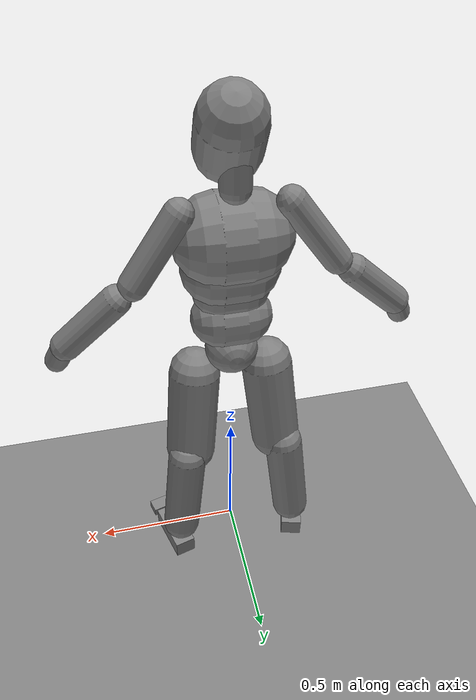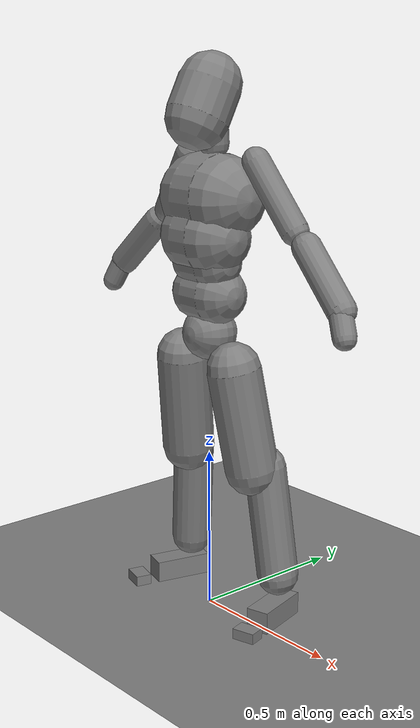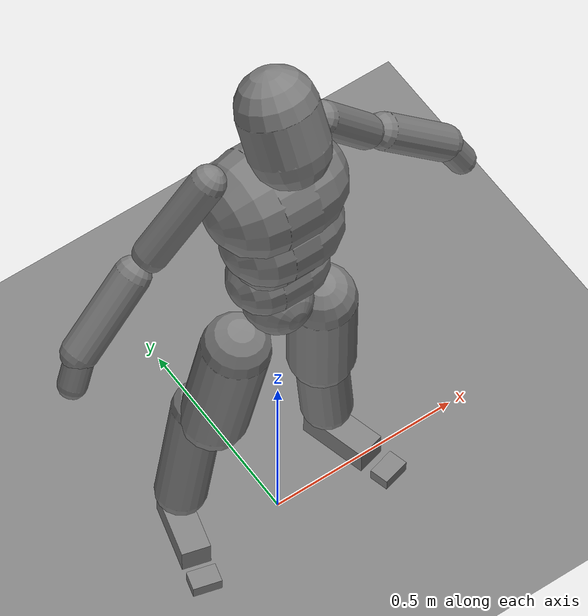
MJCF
<mujoco model="geno">
  <compiler angle="degree"/>
  <worldbody>
    <geom name="floor" type="plane" size="20 20 0.1"/>
    <body name="Hips" pos="0.000136 0.021367 0.855290" quat="0.7190179 0.6949371 0.0066784 0.0055692">
      <freejoint/>
      <inertial pos="-0.002797 0.044457 0.024092" mass="4.45589" fullinertia="1.416881e-2 4.166509e-2 3.345195e-2 4.384086e-4 -3.429711e-4 4.219764e-4"/>
      <geom name="Hips" type="sphere" pos="-0.000517 0.025090 0.020067" size="0.083130" mass="0"/>
      <body name="Spine" pos="0.000000 0.088142 -0.020800" quat="0.9998620 0.0151347 -0.0023620 0.0064243">
        <joint name="Spine" type="ball" range="0 11.21" armature="0.01" damping="0.2"/>
        <inertial pos="0.002484 0.043300 0.056409" mass="4.08115" fullinertia="1.405166e-2 3.181992e-2 2.314766e-2 4.918427e-4 3.236678e-5 -4.556020e-4"/>
        <geom name="Spine" type="capsule" fromto="-0.036303 0.060079 0.043650 0.036727 0.059267 0.044583" size="0.088850" mass="0"/>
        <body name="Spine1" pos="0.000000 0.088441 -0.000000" quat="0.9999121 0.0123071 -0.0048690 -0.0007149">
          <joint name="Spine1" type="ball" range="0 18.96" armature="0.01" damping="0.2"/>
          <inertial pos="0.001022 0.059312 0.062439" mass="4.55067" fullinertia="1.594185e-2 2.975274e-2 2.435049e-2 1.011372e-4 -9.664256e-5 2.502705e-4"/>
          <geom name="Spine1" type="capsule" fromto="-0.033319 0.071789 0.052966 0.036517 0.071126 0.053195" size="0.082490" mass="0"/>
          <body name="Spine2" pos="-0.000000 0.116823 0.000000" quat="0.9999123 0.0123117 -0.0048472 -0.0006809">
            <joint name="Spine2" type="ball" range="0 18.96" armature="0.01" damping="0.2"/>
            <inertial pos="0.003052 0.064627 0.037981" mass="5.95934" fullinertia="2.652761e-2 5.119871e-2 3.785424e-2 1.557172e-4 5.341413e-5 1.251421e-3"/>
            <geom name="Spine2" type="capsule" fromto="-0.032477 0.030267 0.055403 0.038059 0.029691 0.054966" size="0.112590" mass="0"/>
            <body name="Spine3" pos="0.000000 0.117467 -0.000000" quat="0.9999002 0.0123961 0.0066540 -0.0013138">
              <joint name="Spine3" type="ball" range="0 18.80" armature="0.01" damping="0.2"/>
              <inertial pos="0.002882 0.054869 0.005577" mass="6.54204" fullinertia="3.225313e-2 6.693120e-2 4.849690e-2 6.867091e-4 -3.467677e-4 7.612631e-6"/>
              <geom name="Spine3" type="capsule" fromto="-0.040853 0.026610 0.022166 0.047143 0.026124 0.022808" size="0.129550" mass="0"/>
              <body name="Neck" pos="0.000000 0.176583 -0.000001" quat="0.9999711 -0.0009803 -0.0016147 -0.0073652">
                <joint name="Neck" type="ball" range="0 26.45" armature="0.01" damping="0.2"/>
                <inertial pos="-0.007228 0.026166 -0.021022" mass="0.45049" fullinertia="5.296824e-4 7.544096e-4 4.395163e-4 -5.079582e-5 -2.347617e-5 -6.816015e-5"/>
                <body name="Neck1" pos="0.000000 0.051015 0.000000" quat="0.9998862 -0.0106710 -0.0009015 0.0106326">
                  <joint name="Neck1" type="ball" range="0 25.87" armature="0.01" damping="0.2"/>
                  <inertial pos="0.004790 0.025451 0.024238" mass="0.94423" fullinertia="2.028932e-3 2.730615e-3 1.209336e-3 -8.382928e-6 1.242427e-5 5.000565e-5"/>
                  <geom name="Neck1" type="capsule" fromto="-0.001087 -0.050996 -0.001086 -0.000001 0.051013 0.000005" size="0.044260" mass="0"/>
                  <body name="Head" pos="-0.000000 0.051015 0.000000" quat="0.9997055 -0.0241908 -0.0008839 -0.0017602">
                    <joint name="Head" type="ball" range="0 68.29" armature="0.01" damping="0.2"/>
                    <inertial pos="0.004759 0.068083 0.017647" mass="3.20320" fullinertia="1.227063e-2 1.177448e-2 9.639017e-3 -5.301857e-5 2.517261e-5 4.215603e-4"/>
                    <geom name="Head" type="capsule" fromto="0.004894 0.069709 0.014015 0.004092 -0.023048 0.061185" size="0.095000" mass="0"/>
                  </body>
                </body>
              </body>
              <body name="RightShoulder" pos="-0.026254 0.111752 -0.000000" quat="0.7207133 -0.0480071 -0.0200096 0.6912795">
                <joint name="RightShoulder" type="ball" range="0 51.58" armature="0.01" damping="0.2"/>
                <inertial pos="0.024763 0.056958 -0.026115" mass="1.37239" fullinertia="6.932922e-3 2.655144e-3 5.147230e-3 1.788989e-4 6.598627e-5 -8.186329e-4"/>
                <body name="RightArm" pos="0.000000 0.104347 0.000000" quat="0.9174249 -0.0166565 -0.0312683 0.3963291">
                  <joint name="RightArm" type="ball" range="0 121.39" armature="0.01" damping="0.2"/>
                  <inertial pos="-0.004037 0.117248 -0.003779" mass="2.01781" fullinertia="1.201333e-2 3.342168e-3 1.194582e-2 -6.004349e-4 1.310759e-4 -5.533244e-5"/>
                  <geom name="RightArm" type="capsule" fromto="0.025703 -0.001495 -0.011785 -0.011113 0.229003 -0.003679" size="0.042130" mass="0"/>
                  <body name="RightForeArm" pos="0.000700 0.258718 -0.005370" quat="0.9933285 0.1137151 -0.0055202 0.0183670">
                    <joint name="RightForeArm" type="ball" range="0 145.08" armature="0.01" damping="0.2"/>
                    <inertial pos="0.001672 0.104831 0.004978" mass="1.03858" fullinertia="4.947034e-3 7.897659e-4 4.932617e-3 -1.582228e-4 -2.505104e-5 -2.423182e-5"/>
                    <geom name="RightForeArm" type="capsule" fromto="-0.003560 0.032661 0.003150 0.007905 0.251886 0.002527" size="0.044030" mass="0"/>
                    <body name="RightHand" pos="0.002990 0.248929 -0.000338" quat="0.9931041 0.0852536 0.0222739 0.0773324">
                      <joint name="RightHand" type="ball" range="0 79.11" armature="0.01" damping="0.2"/>
                      <inertial pos="-0.005691 0.065490 0.001969" mass="0.43554" fullinertia="1.046350e-3 4.353276e-4 7.780540e-4 -7.684642e-6 6.810656e-5 4.327392e-5"/>
                      <geom name="RightHand" type="capsule" fromto="0.006658 0.003381 0.008732 -0.004050 0.081477 0.003713" size="0.034900" mass="0"/>
                    </body>
                  </body>
                </body>
              </body>
              <body name="LeftShoulder" pos="0.026254 0.111752 -0.000000" quat="0.7285084 -0.0557227 0.0403427 -0.6815739">
                <joint name="LeftShoulder" type="ball" range="0 48.23" armature="0.01" damping="0.2"/>
                <inertial pos="-0.033361 0.054056 -0.009106" mass="1.44869" fullinertia="7.087823e-3 2.559847e-3 6.043877e-3 -9.254463e-4 -6.481078e-5 6.189940e-4"/>
                <body name="LeftArm" pos="0.000000 0.108136 -0.000000" quat="0.9100260 0.0216595 0.0100473 -0.4138629">
                  <joint name="LeftArm" type="ball" range="0 113.07" armature="0.01" damping="0.2"/>
                  <inertial pos="0.005023 0.106062 -0.001892" mass="2.16155" fullinertia="1.611792e-2 4.098529e-3 1.596975e-2 1.629118e-3 -1.999572e-4 4.388655e-4"/>
                  <geom name="LeftArm" type="capsule" fromto="-0.025782 0.004069 -0.003939 0.010964 0.234711 -0.006006" size="0.042130" mass="0"/>
                  <body name="LeftForeArm" pos="0.004952 0.255930 -0.004494" quat="0.9932600 0.1109474 0.0119880 0.0313284">
                    <joint name="LeftForeArm" type="ball" range="0 144.71" armature="0.01" damping="0.2"/>
                    <inertial pos="0.004125 0.108976 -0.003983" mass="1.09327" fullinertia="5.639841e-3 8.516646e-4 5.627993e-3 -3.029915e-4 3.355343e-5 1.480540e-4"/>
                    <geom name="LeftForeArm" type="capsule" fromto="0.001734 0.039857 -0.003781 0.013311 0.258947 -0.011334" size="0.044030" mass="0"/>
                    <body name="LeftHand" pos="0.011741 0.259241 -0.005205" quat="0.9868162 0.0318785 -0.0276721 -0.1562421">
                      <joint name="LeftHand" type="ball" range="0 103.52" armature="0.01" damping="0.2"/>
                      <inertial pos="0.009379 0.063651 -0.002494" mass="0.42641" fullinertia="9.827932e-4 4.371545e-4 7.270702e-4 4.474766e-5 -7.801054e-5 2.068141e-5"/>
                      <geom name="LeftHand" type="capsule" fromto="0.000001 0.000003 -0.000005 0.006656 0.078708 0.000306" size="0.034900" mass="0"/>
                    </body>
                  </body>
                </body>
              </body>
            </body>
          </body>
        </body>
      </body>
      <body name="RightUpLeg" pos="-0.112899 -0.000000 0.000000" quat="0.9974454 0.0288468 0.0198167 -0.0622722">
        <joint name="RightUpLeg" type="ball" range="0 153.96" armature="0.01" damping="0.2"/>
        <inertial pos="0.017543 -0.152412 0.016316" mass="5.84707" fullinertia="7.784939e-2 2.042338e-2 7.890235e-2 -8.725573e-3 -7.597809e-4 -8.999378e-3"/>
        <geom name="RightUpLeg" type="capsule" fromto="0.001549 -0.064501 0.025390 0.011611 -0.380252 -0.012723" size="0.082460" mass="0"/>
        <body name="RightLeg" pos="0.000000 -0.382003 -0.000002" quat="0.9975101 0.0662387 -0.0239163 -0.0037189">
          <joint name="RightLeg" type="ball" range="0 148.92" armature="0.01" damping="0.2"/>
          <inertial pos="-0.004812 -0.170048 -0.036385" mass="3.07622" fullinertia="3.783292e-2 4.880782e-3 3.651683e-2 9.583037e-4 -1.442494e-4 3.090964e-3"/>
          <geom name="RightLeg" type="capsule" fromto="-0.007464 -0.005354 -0.050748 0.001044 -0.352168 -0.017809" size="0.064070" mass="0"/>
          <body name="RightFoot" pos="0.000000 -0.399008 -0.000000" quat="0.9829418 0.1597410 -0.0809280 0.0419338">
            <joint name="RightFoot" type="ball" range="0 71.15" armature="0.01" damping="0.2"/>
            <inertial pos="-0.000831 -0.033604 0.044814" mass="1.07740" fullinertia="3.929912e-3 3.718404e-3 1.246483e-3 -1.924265e-5 1.227123e-4 -7.859172e-4"/>
            <geom name="RightFoot" type="box" pos="-0.001339 -0.037983 0.050393" quat="0.6661902 -0.1131844 -0.7094225 0.2002426" size="0.089970 0.034900 0.036180" mass="0"/>
            <body name="RightToeBase" pos="0.000000 -0.000000 0.152617" quat="0.9861133 -0.1660610 -0.0015025 0.0013379">
              <joint name="RightToeBase" type="ball" range="0 47.85" armature="0.01" damping="0.2"/>
              <inertial pos="0.000907 -0.004122 0.019932" mass="0.12362" fullinertia="3.987718e-5 8.752541e-5 7.208285e-5 -5.903843e-6 -4.191459e-6 -4.646142e-6"/>
              <geom name="RightToeBase" type="box" pos="-0.011820 -0.003959 0.035152" quat="0.6770684 -0.0016327 -0.7316713 0.0789332" size="0.025000 0.017450 0.036180" mass="0"/>
            </body>
          </body>
        </body>
      </body>
      <body name="LeftUpLeg" pos="0.113157 0.000000 0.000000" quat="0.9960126 0.0217091 -0.0498111 0.0707549">
        <joint name="LeftUpLeg" type="ball" range="0 143.21" armature="0.01" damping="0.2"/>
        <inertial pos="-0.012464 -0.163604 0.017225" mass="5.41642" fullinertia="6.708313e-2 1.515231e-2 6.327340e-2 1.129289e-3 -4.968466e-5 -8.690740e-3"/>
        <geom name="LeftUpLeg" type="capsule" fromto="-0.002040 -0.064295 0.028509 -0.017703 -0.379329 -0.013456" size="0.082460" mass="0"/>
        <body name="LeftLeg" pos="0.000004 -0.382004 0.000039" quat="0.9980025 0.0504194 0.0370947 -0.0085329">
          <joint name="LeftLeg" type="ball" range="0 153.59" armature="0.01" damping="0.2"/>
          <inertial pos="0.001029 -0.168197 -0.045719" mass="3.11473" fullinertia="3.850738e-2 4.756514e-3 3.744577e-2 -6.441914e-4 9.741593e-5 1.644770e-3"/>
          <geom name="LeftLeg" type="capsule" fromto="0.001892 -0.002635 -0.052481 -0.003067 -0.350649 -0.035189" size="0.064070" mass="0"/>
          <body name="LeftFoot" pos="0.000000 -0.399008 0.000000" quat="0.9836823 0.1637325 0.0730477 0.0149902">
            <joint name="LeftFoot" type="ball" range="0 57.12" armature="0.01" damping="0.2"/>
            <inertial pos="-0.001280 -0.039710 0.030473" mass="1.14000" fullinertia="4.751633e-3 4.588706e-3 1.274074e-3 3.623172e-6 -2.190323e-4 -8.421740e-4"/>
            <geom name="LeftFoot" type="box" pos="-0.001272 -0.045679 0.029951" quat="0.6576784 -0.0637078 0.7185252 -0.2170705" size="0.089970 0.034900 0.036180" mass="0"/>
            <body name="LeftToeBase" pos="0.000000 -0.000000 0.152616" quat="0.9840154 -0.1779332 0.0052535 -0.0050582">
              <joint name="LeftToeBase" type="ball" range="0 68.99" armature="0.01" damping="0.2"/>
              <inertial pos="-0.000212 -0.010227 0.010117" mass="0.06316" fullinertia="1.215378e-5 2.893389e-5 2.767069e-5 3.792290e-6 1.958035e-6 -1.489016e-6"/>
              <geom name="LeftToeBase" type="box" pos="0.013483 -0.012232 0.012498" quat="0.6633742 0.0518392 0.7418866 -0.0827592" size="0.025000 0.017450 0.036180" mass="0"/>
            </body>
          </body>
        </body>
      </body>
    </body>
  </worldbody>
  <contact>
    <exclude body1="Head" body2="Hips"/>
    <exclude body1="Head" body2="LeftArm"/>
    <exclude body1="Head" body2="LeftFoot"/>
    <exclude body1="Head" body2="LeftForeArm"/>
    <exclude body1="Head" body2="LeftHand"/>
    <exclude body1="Head" body2="LeftLeg"/>
    <exclude body1="Head" body2="LeftToeBase"/>
    <exclude body1="Head" body2="LeftUpLeg"/>
    <exclude body1="Head" body2="Neck1"/>
    <exclude body1="Head" body2="RightArm"/>
    <exclude body1="Head" body2="RightFoot"/>
    <exclude body1="Head" body2="RightForeArm"/>
    <exclude body1="Head" body2="RightHand"/>
    <exclude body1="Head" body2="RightLeg"/>
    <exclude body1="Head" body2="RightToeBase"/>
    <exclude body1="Head" body2="RightUpLeg"/>
    <exclude body1="Head" body2="Spine"/>
    <exclude body1="Head" body2="Spine1"/>
    <exclude body1="Head" body2="Spine2"/>
    <exclude body1="Head" body2="Spine3"/>
    <exclude body1="Hips" body2="LeftArm"/>
    <exclude body1="Hips" body2="LeftFoot"/>
    <exclude body1="Hips" body2="LeftForeArm"/>
    <exclude body1="Hips" body2="LeftHand"/>
    <exclude body1="Hips" body2="LeftLeg"/>
    <exclude body1="Hips" body2="LeftToeBase"/>
    <exclude body1="Hips" body2="LeftUpLeg"/>
    <exclude body1="Hips" body2="Neck1"/>
    <exclude body1="Hips" body2="RightArm"/>
    <exclude body1="Hips" body2="RightFoot"/>
    <exclude body1="Hips" body2="RightForeArm"/>
    <exclude body1="Hips" body2="RightHand"/>
    <exclude body1="Hips" body2="RightLeg"/>
    <exclude body1="Hips" body2="RightToeBase"/>
    <exclude body1="Hips" body2="RightUpLeg"/>
    <exclude body1="Hips" body2="Spine"/>
    <exclude body1="Hips" body2="Spine1"/>
    <exclude body1="Hips" body2="Spine2"/>
    <exclude body1="Hips" body2="Spine3"/>
    <exclude body1="LeftArm" body2="LeftFoot"/>
    <exclude body1="LeftArm" body2="LeftForeArm"/>
    <exclude body1="LeftArm" body2="LeftHand"/>
    <exclude body1="LeftArm" body2="LeftLeg"/>
    <exclude body1="LeftArm" body2="LeftToeBase"/>
    <exclude body1="LeftArm" body2="LeftUpLeg"/>
    <exclude body1="LeftArm" body2="Neck1"/>
    <exclude body1="LeftArm" body2="RightArm"/>
    <exclude body1="LeftArm" body2="RightFoot"/>
    <exclude body1="LeftArm" body2="RightForeArm"/>
    <exclude body1="LeftArm" body2="RightHand"/>
    <exclude body1="LeftArm" body2="RightLeg"/>
    <exclude body1="LeftArm" body2="RightToeBase"/>
    <exclude body1="LeftArm" body2="RightUpLeg"/>
    <exclude body1="LeftArm" body2="Spine"/>
    <exclude body1="LeftArm" body2="Spine1"/>
    <exclude body1="LeftArm" body2="Spine2"/>
    <exclude body1="LeftArm" body2="Spine3"/>
    <exclude body1="LeftFoot" body2="LeftForeArm"/>
    <exclude body1="LeftFoot" body2="LeftHand"/>
    <exclude body1="LeftFoot" body2="LeftLeg"/>
    <exclude body1="LeftFoot" body2="LeftToeBase"/>
    <exclude body1="LeftFoot" body2="LeftUpLeg"/>
    <exclude body1="LeftFoot" body2="Neck1"/>
    <exclude body1="LeftFoot" body2="RightArm"/>
    <exclude body1="LeftFoot" body2="RightFoot"/>
    <exclude body1="LeftFoot" body2="RightForeArm"/>
    <exclude body1="LeftFoot" body2="RightHand"/>
    <exclude body1="LeftFoot" body2="RightLeg"/>
    <exclude body1="LeftFoot" body2="RightToeBase"/>
    <exclude body1="LeftFoot" body2="RightUpLeg"/>
    <exclude body1="LeftFoot" body2="Spine"/>
    <exclude body1="LeftFoot" body2="Spine1"/>
    <exclude body1="LeftFoot" body2="Spine2"/>
    <exclude body1="LeftFoot" body2="Spine3"/>
    <exclude body1="LeftForeArm" body2="LeftHand"/>
    <exclude body1="LeftForeArm" body2="LeftLeg"/>
    <exclude body1="LeftForeArm" body2="LeftToeBase"/>
    <exclude body1="LeftForeArm" body2="LeftUpLeg"/>
    <exclude body1="LeftForeArm" body2="Neck1"/>
    <exclude body1="LeftForeArm" body2="RightArm"/>
    <exclude body1="LeftForeArm" body2="RightFoot"/>
    <exclude body1="LeftForeArm" body2="RightForeArm"/>
    <exclude body1="LeftForeArm" body2="RightHand"/>
    <exclude body1="LeftForeArm" body2="RightLeg"/>
    <exclude body1="LeftForeArm" body2="RightToeBase"/>
    <exclude body1="LeftForeArm" body2="RightUpLeg"/>
    <exclude body1="LeftForeArm" body2="Spine"/>
    <exclude body1="LeftForeArm" body2="Spine1"/>
    <exclude body1="LeftForeArm" body2="Spine2"/>
    <exclude body1="LeftForeArm" body2="Spine3"/>
    <exclude body1="LeftHand" body2="LeftLeg"/>
    <exclude body1="LeftHand" body2="LeftToeBase"/>
    <exclude body1="LeftHand" body2="LeftUpLeg"/>
    <exclude body1="LeftHand" body2="Neck1"/>
    <exclude body1="LeftHand" body2="RightArm"/>
    <exclude body1="LeftHand" body2="RightFoot"/>
    <exclude body1="LeftHand" body2="RightForeArm"/>
    <exclude body1="LeftHand" body2="RightHand"/>
    <exclude body1="LeftHand" body2="RightLeg"/>
    <exclude body1="LeftHand" body2="RightToeBase"/>
    <exclude body1="LeftHand" body2="RightUpLeg"/>
    <exclude body1="LeftHand" body2="Spine"/>
    <exclude body1="LeftHand" body2="Spine1"/>
    <exclude body1="LeftHand" body2="Spine2"/>
    <exclude body1="LeftHand" body2="Spine3"/>
    <exclude body1="LeftLeg" body2="LeftToeBase"/>
    <exclude body1="LeftLeg" body2="LeftUpLeg"/>
    <exclude body1="LeftLeg" body2="Neck1"/>
    <exclude body1="LeftLeg" body2="RightArm"/>
    <exclude body1="LeftLeg" body2="RightFoot"/>
    <exclude body1="LeftLeg" body2="RightForeArm"/>
    <exclude body1="LeftLeg" body2="RightHand"/>
    <exclude body1="LeftLeg" body2="RightLeg"/>
    <exclude body1="LeftLeg" body2="RightToeBase"/>
    <exclude body1="LeftLeg" body2="RightUpLeg"/>
    <exclude body1="LeftLeg" body2="Spine"/>
    <exclude body1="LeftLeg" body2="Spine1"/>
    <exclude body1="LeftLeg" body2="Spine2"/>
    <exclude body1="LeftLeg" body2="Spine3"/>
    <exclude body1="LeftToeBase" body2="LeftUpLeg"/>
    <exclude body1="LeftToeBase" body2="Neck1"/>
    <exclude body1="LeftToeBase" body2="RightArm"/>
    <exclude body1="LeftToeBase" body2="RightFoot"/>
    <exclude body1="LeftToeBase" body2="RightForeArm"/>
    <exclude body1="LeftToeBase" body2="RightHand"/>
    <exclude body1="LeftToeBase" body2="RightLeg"/>
    <exclude body1="LeftToeBase" body2="RightToeBase"/>
    <exclude body1="LeftToeBase" body2="RightUpLeg"/>
    <exclude body1="LeftToeBase" body2="Spine"/>
    <exclude body1="LeftToeBase" body2="Spine1"/>
    <exclude body1="LeftToeBase" body2="Spine2"/>
    <exclude body1="LeftToeBase" body2="Spine3"/>
    <exclude body1="LeftUpLeg" body2="Neck1"/>
    <exclude body1="LeftUpLeg" body2="RightArm"/>
    <exclude body1="LeftUpLeg" body2="RightFoot"/>
    <exclude body1="LeftUpLeg" body2="RightForeArm"/>
    <exclude body1="LeftUpLeg" body2="RightHand"/>
    <exclude body1="LeftUpLeg" body2="RightLeg"/>
    <exclude body1="LeftUpLeg" body2="RightToeBase"/>
    <exclude body1="LeftUpLeg" body2="RightUpLeg"/>
    <exclude body1="LeftUpLeg" body2="Spine"/>
    <exclude body1="LeftUpLeg" body2="Spine1"/>
    <exclude body1="LeftUpLeg" body2="Spine2"/>
    <exclude body1="LeftUpLeg" body2="Spine3"/>
    <exclude body1="Neck1" body2="RightArm"/>
    <exclude body1="Neck1" body2="RightFoot"/>
    <exclude body1="Neck1" body2="RightForeArm"/>
    <exclude body1="Neck1" body2="RightHand"/>
    <exclude body1="Neck1" body2="RightLeg"/>
    <exclude body1="Neck1" body2="RightToeBase"/>
    <exclude body1="Neck1" body2="RightUpLeg"/>
    <exclude body1="Neck1" body2="Spine"/>
    <exclude body1="Neck1" body2="Spine1"/>
    <exclude body1="Neck1" body2="Spine2"/>
    <exclude body1="Neck1" body2="Spine3"/>
    <exclude body1="RightArm" body2="RightFoot"/>
    <exclude body1="RightArm" body2="RightForeArm"/>
    <exclude body1="RightArm" body2="RightHand"/>
    <exclude body1="RightArm" body2="RightLeg"/>
    <exclude body1="RightArm" body2="RightToeBase"/>
    <exclude body1="RightArm" body2="RightUpLeg"/>
    <exclude body1="RightArm" body2="Spine"/>
    <exclude body1="RightArm" body2="Spine1"/>
    <exclude body1="RightArm" body2="Spine2"/>
    <exclude body1="RightArm" body2="Spine3"/>
    <exclude body1="RightFoot" body2="RightForeArm"/>
    <exclude body1="RightFoot" body2="RightHand"/>
    <exclude body1="RightFoot" body2="RightLeg"/>
    <exclude body1="RightFoot" body2="RightToeBase"/>
    <exclude body1="RightFoot" body2="RightUpLeg"/>
    <exclude body1="RightFoot" body2="Spine"/>
    <exclude body1="RightFoot" body2="Spine1"/>
    <exclude body1="RightFoot" body2="Spine2"/>
    <exclude body1="RightFoot" body2="Spine3"/>
    <exclude body1="RightForeArm" body2="RightHand"/>
    <exclude body1="RightForeArm" body2="RightLeg"/>
    <exclude body1="RightForeArm" body2="RightToeBase"/>
    <exclude body1="RightForeArm" body2="RightUpLeg"/>
    <exclude body1="RightForeArm" body2="Spine"/>
    <exclude body1="RightForeArm" body2="Spine1"/>
    <exclude body1="RightForeArm" body2="Spine2"/>
    <exclude body1="RightForeArm" body2="Spine3"/>
    <exclude body1="RightHand" body2="RightLeg"/>
    <exclude body1="RightHand" body2="RightToeBase"/>
    <exclude body1="RightHand" body2="RightUpLeg"/>
    <exclude body1="RightHand" body2="Spine"/>
    <exclude body1="RightHand" body2="Spine1"/>
    <exclude body1="RightHand" body2="Spine2"/>
    <exclude body1="RightHand" body2="Spine3"/>
    <exclude body1="RightLeg" body2="RightToeBase"/>
    <exclude body1="RightLeg" body2="RightUpLeg"/>
    <exclude body1="RightLeg" body2="Spine"/>
    <exclude body1="RightLeg" body2="Spine1"/>
    <exclude body1="RightLeg" body2="Spine2"/>
    <exclude body1="RightLeg" body2="Spine3"/>
    <exclude body1="RightToeBase" body2="RightUpLeg"/>
    <exclude body1="RightToeBase" body2="Spine"/>
    <exclude body1="RightToeBase" body2="Spine1"/>
    <exclude body1="RightToeBase" body2="Spine2"/>
    <exclude body1="RightToeBase" body2="Spine3"/>
    <exclude body1="RightUpLeg" body2="Spine"/>
    <exclude body1="RightUpLeg" body2="Spine1"/>
    <exclude body1="RightUpLeg" body2="Spine2"/>
    <exclude body1="RightUpLeg" body2="Spine3"/>
    <exclude body1="Spine" body2="Spine1"/>
    <exclude body1="Spine" body2="Spine2"/>
    <exclude body1="Spine" body2="Spine3"/>
    <exclude body1="Spine1" body2="Spine2"/>
    <exclude body1="Spine1" body2="Spine3"/>
    <exclude body1="Spine2" body2="Spine3"/>
  </contact>
</mujoco>
